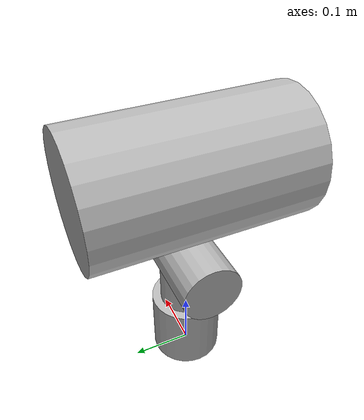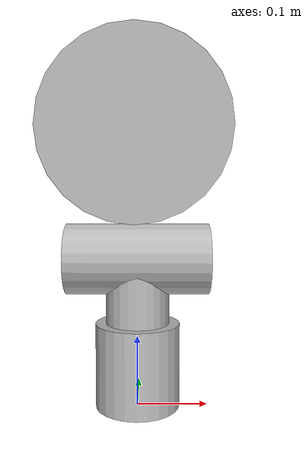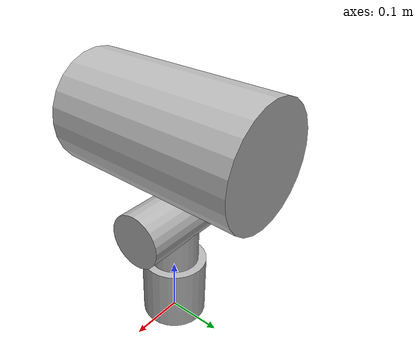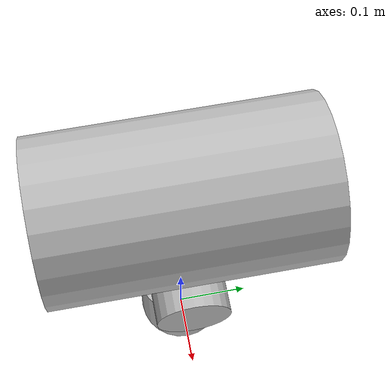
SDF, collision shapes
<?xml version="1.0"?>
<sdf version="1.6">
 <model name="3dad_sl3">
   <link name="base">
    <!-- Offset the base by half the length of the cylinder -->
    <inertial>
      <pose>0 0 0.06 0 0 0</pose>
      <mass>2.84</mass>
      <inertia>
        <ixx>0.005964</ixx>
        <iyy>0.005964</iyy>
        <izz>0.005112</izz>
        <ixy>0</ixy>
        <ixz>0</ixz>
        <iyz>0</iyz>
      </inertia>
    </inertial>

    <collision name="base_collision">
    <pose>0 0 0.06 0 0 0</pose>
      <geometry>
        <cylinder>
          <radius>.06</radius>
          <length>.12</length>
        </cylinder>
      </geometry>
    </collision>

    <!-- The visual is mostly a copy of the collision -->
    <visual name="base_visual">
    <pose>0 0.034 0.375 0 0 0</pose>
      <geometry>
       <mesh>
         <uri>model://3dad_sl3/mesh/uw_lidar_mount_base.dae</uri>
       </mesh>
     </geometry>
     </visual>
   </link>

  <link name="top">
    <!-- Offset the base by half the length of the cylinder -->
    <inertial>
      <pose>0 0 0.1575 0 0 0</pose>
      <mass>1</mass>
      <inertia>
        <ixx>0.000975</ixx>
        <iyy>0.000975</iyy>
        <izz>0.0010125</izz>
        <ixy>0</ixy>
        <ixz>0</ixz>
        <iyz>0</iyz>
      </inertia>
    </inertial>

    <collision name="top_collision">
    <pose>0 0 0.1575 0 0 0</pose>
      <geometry>
        <cylinder>
          <radius>.045</radius>
          <length>.075</length>
        </cylinder>
      </geometry>
    </collision>

    <!-- The visual is mostly a copy of the collision -->
    <visual name="top_visual">
    <pose>0 0.034 0.375 0 0 0</pose>
      <geometry>
       <mesh>
         <uri>model://3dad_sl3/mesh/uw_lidar_mount_swivel.dae</uri>
       </mesh>
     </geometry>
    </visual>
   </link>

  <link name="tray">

    <inertial>
      <pose>0 0 0.212 0 1.570796 0</pose>
      <mass>3.29</mass>
      <inertia>
        <ixx>0.01302291666</ixx>
        <iyy>0.01302291666</iyy>
        <izz>0.0041125</izz>
        <ixy>0</ixy>
        <ixz>0</ixz>
        <iyz>0</iyz>
      </inertia>
    </inertial>

    <collision name="tray_collision">
     <pose>0 0 0.212 0 1.570796 0</pose>
      <geometry>
        <!--volume = 0.00071 cubic meters-->
        <cylinder>
          <radius>.05</radius>
          <length>.2</length>
        </cylinder>
      </geometry>
    </collision>

    <!-- The visual is mostly a copy of the collision -->
    <visual name="tray_visual">
    <pose>0 0.034 0.375 0 0 0</pose>
      <geometry>
       <mesh>
         <uri>model://3dad_sl3/mesh/uw_lidar_mount_tray.dae</uri>
       </mesh>
     </geometry>
    </visual>
   </link>

   <link name="3dad_sl3_link">
    <visual name="3dad_sl3_visual">
     <pose>0 0 0.375 0 0 0</pose>
     <geometry>
       <mesh>
         <uri>model://3dad_sl3/mesh/3dad_sl3.dae</uri>
       </mesh>
     </geometry>
    </visual>
    <collision name="3dad_sl3_collision">
     <pose>0 0 0.375 0 1.570796 1.570796</pose>
     <geometry>
       <cylinder>
         <radius>0.105</radius>
         <length>0.355</length>
       </cylinder>
     </geometry>
    </collision>
    <inertial>
     <mass>20.9</mass>
     <pose>0 0 0.375 0 0 0</pose>
     <inertia>
       <ixx>0.27709917</ixx>
       <iyy>0.11521125</iyy>
       <izz>0.27709917</izz>
       <ixy>0</ixy>
       <ixz>0</ixz>
       <iyz>0</iyz>
     </inertia>
    </inertial>
    <sensor name="3d_pulse_lidar" type="gpu_ray">
      <plugin name="pulse_lidar_sensing" filename="libgazebo_ros_velodyne_gpu_laser.so">
          <topicName>nps_gazebo_ros_uw/pulse_lidar/points</topicName>
          <frameName>nps_gazebo_ros_uw/pulse_lidar_link</frameName>
          <min_intensity>0</min_intensity>
          <min_range>1</min_range>
          <max_range>20</max_range>
          <gaussianNoise>0.05</gaussianNoise>
      </plugin>

      <always_on>true</always_on>
      <pose>0.014 -0.2 0.38 0 0 -1.570796</pose>

      <!-- Enable visualization to see the rays in the GUI -->
      <visualize>true</visualize>

      <!-- Set the update rate of the sensor -->
      <update_rate>40</update_rate>
     <ray>
       <!-- The scan element contains the horizontal and vertical beams.-->
       <scan>
         <!-- The horizontal beams -->
         <horizontal>
           <!-- # of horizontal beams simulates a spinning beam -->
           <samples>1450</samples>
           <resolution>0.1</resolution>
           <!-- Minimum angle in radians -->
           <min_angle>-0.26179938779</min_angle>
           <!-- Maximum angle in radians -->
           <max_angle>0.26179938779</max_angle>
         </horizontal>

         <vertical>
           <samples>1450</samples>
           <resolution>0.1</resolution>
           <min_angle>-0.26179938779</min_angle>
           <max_angle>0.26179938779</max_angle>
         </vertical>
       </scan>

       <!-- Range defines characteristics of an individual beam -->
       <range>
         <!-- Minimum distance of the beam in meters-->
         <min>1</min>
         <!-- Maximum distance of the beam in meters.
              Should be between 2 and 45 meters, depending on visibility. -->
         <max>20</max>
         <!-- Linear resolution of each lidar ray. This _may_ refer to depth resolution. -->
         <resolution>0.1</resolution>
       </range>
       <noise>
         <!-- Use gaussian noise -->
         <type>gaussian</type>
         <mean>0.0</mean>
         <stddev>0.05</stddev>
       </noise>
      </ray>
    </sensor>
   </link>

   <!-- Each joint must have a unique name -->
   <joint type="revolute" name="base_top_joint">
     <!-- Position the joint at the bottom of the top link -->
     <pose>0 0 0.12 0 0 0</pose>
     <!-- Use the base link as the parent of the joint -->
     <parent>base</parent>
     <!-- Use the top link as the child of the joint -->
     <child>top</child>
     <!-- The axis defines the joint's degree of freedom -->
     <axis>
       <!-- Revolve around the z-axis -->
       <xyz>0 0 1</xyz>
       <!-- Limit refers to the range of motion of the joint -->
       <limit>
         <lower>-3.05432619099</lower>
         <upper>3.05432619099</upper>
       </limit>
     </axis>
   </joint>

   <!-- Each joint must have a unique name -->
   <joint type="revolute" name="top_tray_joint">
     <!-- Position the joint at the bottom of the top link -->
     <pose>0 0 0.212 0 0 3.14159265359</pose>
     <!-- Use the base link as the parent of the joint -->
     <parent>top</parent>
     <!-- Use the top link as the child of the joint -->
     <child>tray</child>
     <!-- The axis defines the joint's degree of freedom -->
     <axis>
       <!-- Revolve around the y-axis -->
       <xyz>0 1 0</xyz>
       <!-- Limit refers to the range of motion of the joint -->
       <limit>
         <lower>-0.26179938779</lower>
         <upper>0.26179938779</upper>
       </limit>
     </axis>
   </joint>

   <!-- Each joint must have a unique name -->
   <joint type="fixed" name="tray_lidar_joint">
     <!-- Position the joint at the bottom of the top link -->
     <pose>0 0 0.275 0 0 0</pose>
     <!-- Use the base link as the parent of the joint -->
     <parent>tray</parent>
     <!-- Use the top link as the child of the joint -->
     <child>3dad_sl3_link</child>
   </joint>

  </model>
</sdf>
